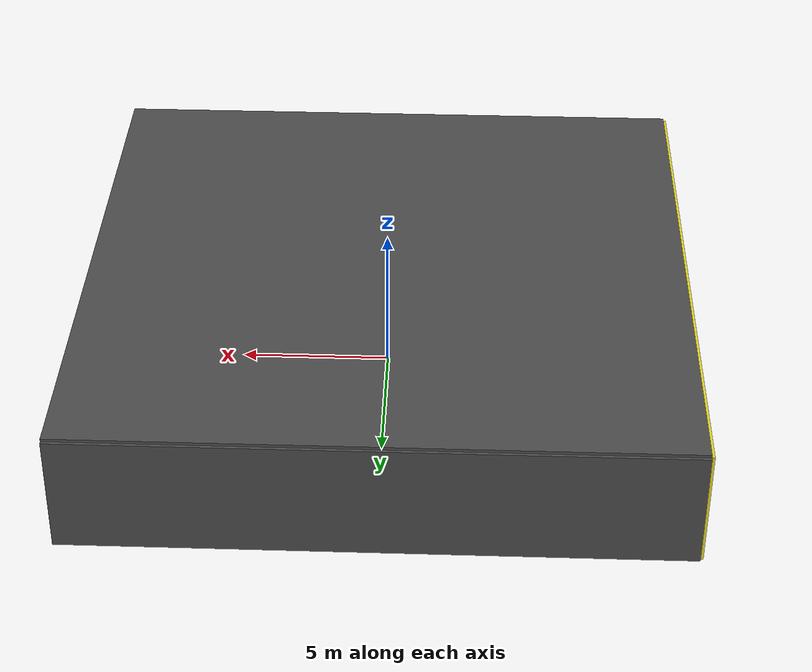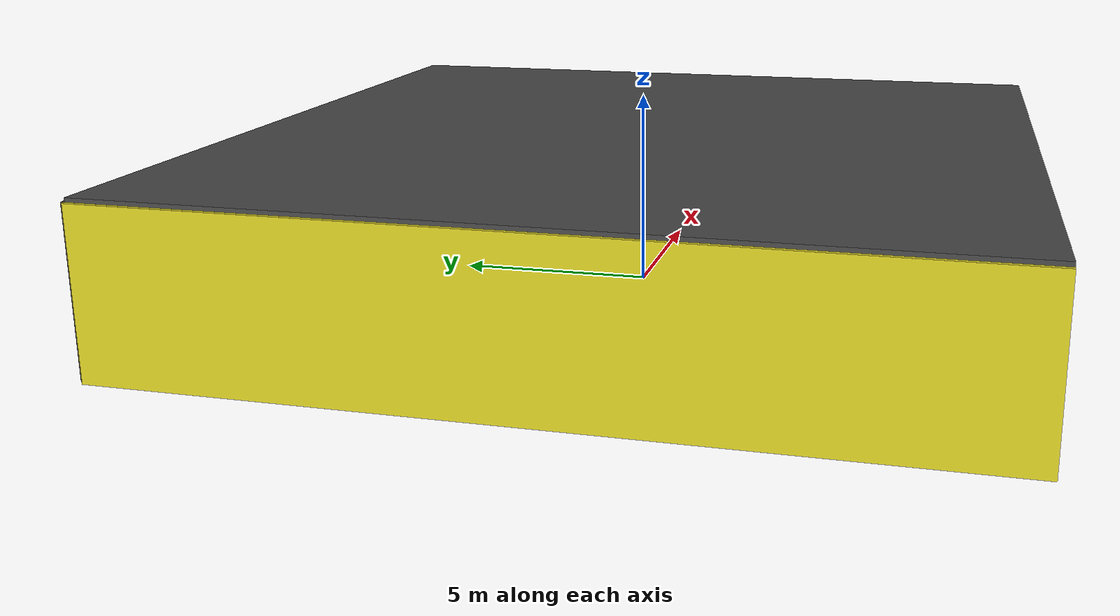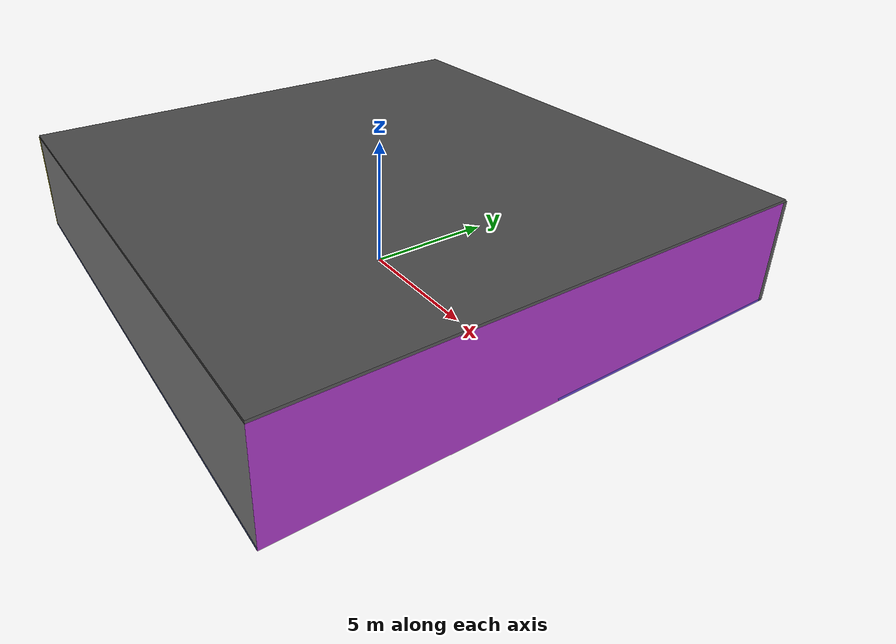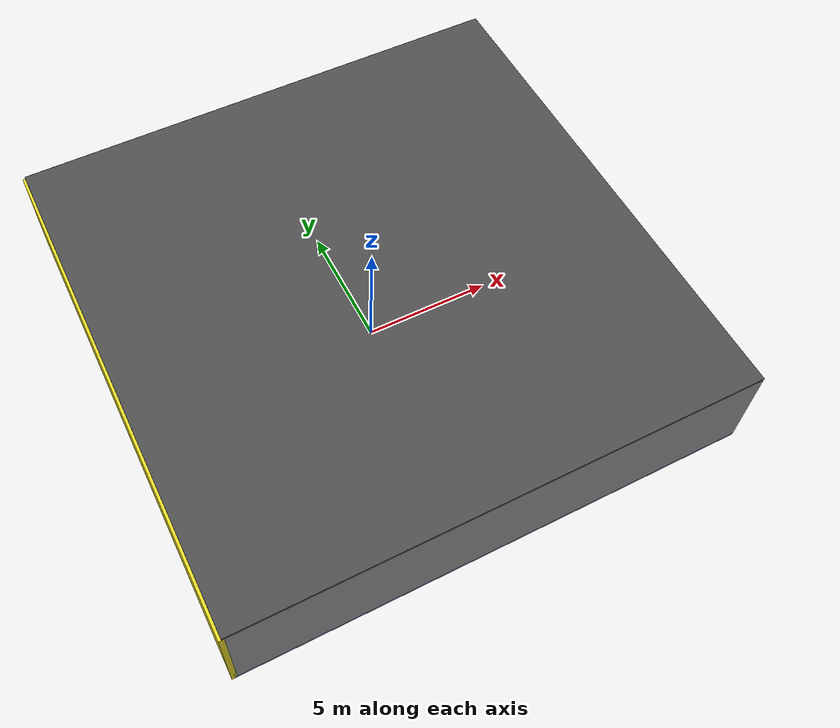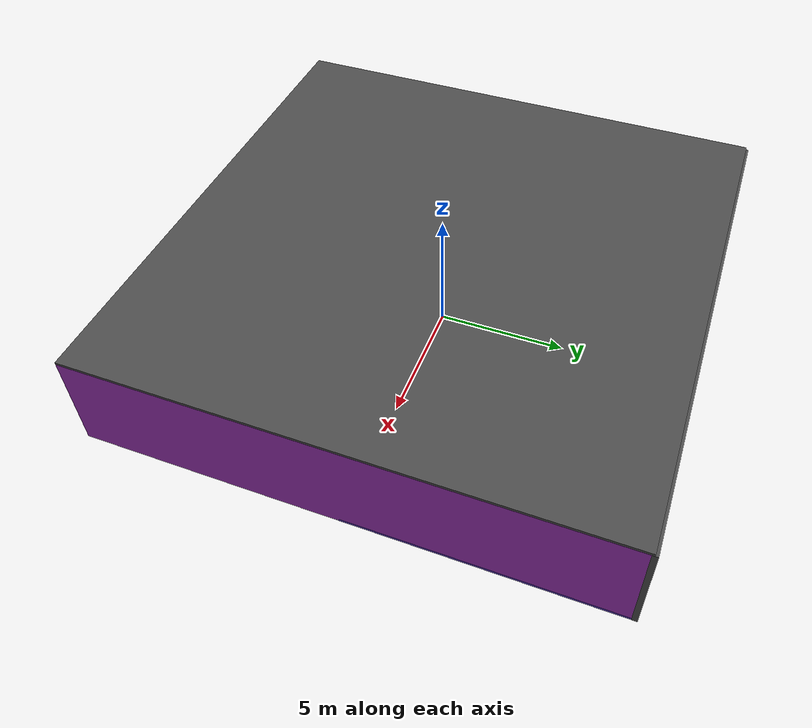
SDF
<sdf version="1.4">
 <world name="default">
  <physics type="ode">
   <max_step_size>0.001</max_step_size>
   <real_time_factor>1</real_time_factor>
   <real_time_update_rate>1000</real_time_update_rate>
   <gravity>0 0 -9.8</gravity>
  </physics>
  <scene><ambient>0.4 0.4 0.4 1</ambient><background>0.7 0.7 0.7 1</background><shadows>1</shadows></scene>
  <model name="Surrounding">
   <static>1</static>
   <link name="Ceiling">
    <collision name="Ceiling_Collision"><geometry><box><size>20 20 0.1</size></box></geometry></collision>
    <visual name="Ceiling_Visual">
     <geometry><box><size>20 20 0.1</size></box></geometry>
     <material>
      <script><uri>file://media/materials/scripts/gazebo.material</uri><name>Gazebo/DarkGrey</name></script>
     </material>
    </visual>
    <pose>0 0 4.05 0 0 0</pose>
   </link>
   <link name="Wall_South">
    <collision name="Wall_South_Collision">
     <geometry><box><size>20 0 4</size></box></geometry>
     <pose>0 0 2 0 -0 0</pose>
    </collision>
    <visual name="Wall_South_Visual">
     <pose>0 0 2 0 -0 0</pose>
     <geometry><box><size>20 0 4</size></box></geometry>
     <material>
      <script><uri>file://media/materials/scripts/gazebo.material</uri><name>Gazebo/GreyGradientSky</name></script>
     </material>
    </visual>
    <velocity_decay><linear>0</linear><angular>0</angular></velocity_decay>
    <pose>0 -10 0 0 -0 0</pose>
   </link>
   <link name="Wall_East">
    <collision name="Wall_21_Collision">
     <geometry><box><size>20 0 4</size></box></geometry>
     <pose>0 0 2 0 -0 0</pose>
    </collision>
    <visual name="Wall_21_Visual">
     <pose>0 0 2 0 -0 0</pose>
     <geometry><box><size>20 0 4</size></box></geometry>
     <material>
      <script><uri>file://media/materials/scripts/gazebo.material</uri><name>Gazebo/PurpleGlow</name></script>
     </material>
    </visual>
    <velocity_decay><linear>0</linear><angular>0</angular></velocity_decay>
    <pose>10 0 0 0 -0 1.5708</pose>
   </link>
   <link name="Wall_North">
    <collision name="Wall_22_Collision">
     <geometry><box><size>20 0.2 4</size></box></geometry>
     <pose>0 0 2 0 -0 0</pose>
    </collision>
    <visual name="Wall_22_Visual">
     <pose>0 0 2 0 -0 0</pose>
     <geometry><box><size>20 0.2 4</size></box></geometry>
     <material>
      <script><uri>file://media/materials/scripts/gazebo.material</uri><name>Gazebo/DarkGrey</name></script>
     </material>
    </visual>
    <velocity_decay><linear>0</linear><angular>0</angular></velocity_decay>
    <pose>0 10 0 0 -0 0</pose>
   </link>
   <link name="Wall_West">
    <collision name="Wall_23_Collision">
     <geometry><box><size>20 0.2 4</size></box></geometry>
     <pose>0 0 2 0 -0 0</pose>
    </collision>
    <visual name="Wall_23_Visual">
     <pose>0 0 2 0 -0 0</pose>
     <geometry><box><size>20 0.2 4</size></box></geometry>
     <material>
      <script><uri>file://media/materials/scripts/gazebo.material</uri><name>Gazebo/YellowGlow</name></script>
     </material>
    </visual>
    <velocity_decay><linear>0</linear><angular>0</angular></velocity_decay>
    <pose>-10 0 0 0 0 -1.5708</pose>
   </link>
   <link name="Ground_link">
    <collision name="collision">
     <pose>0 0 .05 0 -0 0</pose>
     <geometry><box><size>20 20 0.1</size></box></geometry>
    </collision>
    <visual name="visual">
     <pose>0 0 .05 0 -0 0</pose>
     <geometry><box><size>20 20 0.1</size></box></geometry>
     <material>
      <script><uri>file://media/materials/scripts/gazebo.material</uri><name>Gazebo/BlueTransparent</name></script>
     </material>
    </visual>
   </link>
   <static>1</static>
  </model>
  <spherical_coordinates>
   <surface_model>EARTH_WGS84</surface_model>
   <latitude_deg>0</latitude_deg>
   <longitude_deg>0</longitude_deg>
   <elevation>0</elevation>
   <heading_deg>0</heading_deg>
  </spherical_coordinates>
  <light name="lightball_0" type="diffuse">
   <diffuse>0.8 0.8 0.8 1</diffuse>
   <specular>0.2 0.2 0.2 1</specular>
   <attenuation>
    <range>100</range>
    <constant>0.7</constant>
    <linear>0.01</linear>
    <quadratic>0.001</quadratic>
   </attenuation>
   <direction>-0.5 0.1 -0.9</direction>
   <pose>-9.72528693205 6.65322113315 1.89384050971 0 0 0</pose>
  </light>
  <light name="lightball_1" type="diffuse">
   <diffuse>0.8 0.8 0.8 1</diffuse>
   <specular>0.2 0.2 0.2 1</specular>
   <attenuation>
    <range>100</range>
    <constant>0.7</constant>
    <linear>0.01</linear>
    <quadratic>0.001</quadratic>
   </attenuation>
   <direction>-0.5 0.1 -0.9</direction>
   <pose>-3.44012819509 1.92037072494 1.79241434719 0 0 0</pose>
  </light>
  <light name="lightball_2" type="diffuse">
   <diffuse>0.8 0.8 0.8 1</diffuse>
   <specular>0.2 0.2 0.2 1</specular>
   <attenuation>
    <range>100</range>
    <constant>0.7</constant>
    <linear>0.01</linear>
    <quadratic>0.001</quadratic>
   </attenuation>
   <direction>-0.5 0.1 -0.9</direction>
   <pose>-1.87644853998 -4.07353846027 3.25910537041 0 0 0</pose>
  </light>
  <light name="lightball_3" type="diffuse">
   <diffuse>0.8 0.8 0.8 1</diffuse>
   <specular>0.2 0.2 0.2 1</specular>
   <attenuation>
    <range>100</range>
    <constant>0.7</constant>
    <linear>0.01</linear>
    <quadratic>0.001</quadratic>
   </attenuation>
   <direction>-0.5 0.1 -0.9</direction>
   <pose>-4.88904057618 0.615448266062 2.82697435122 0 0 0</pose>
  </light>
  <light name="lightball_4" type="diffuse">
   <diffuse>0.8 0.8 0.8 1</diffuse>
   <specular>0.2 0.2 0.2 1</specular>
   <attenuation>
    <range>100</range>
    <constant>0.7</constant>
    <linear>0.01</linear>
    <quadratic>0.001</quadratic>
   </attenuation>
   <direction>-0.5 0.1 -0.9</direction>
   <pose>7.17997727367 -5.23773197959 1.83527359009 0 0 0</pose>
  </light>
  <light name="lightball_5" type="diffuse">
   <diffuse>0.8 0.8 0.8 1</diffuse>
   <specular>0.2 0.2 0.2 1</specular>
   <attenuation>
    <range>100</range>
    <constant>0.7</constant>
    <linear>0.01</linear>
    <quadratic>0.001</quadratic>
   </attenuation>
   <direction>-0.5 0.1 -0.9</direction>
   <pose>-3.94492461951 7.49102271274 0.719801364811 0 0 0</pose>
  </light>
  <light name="lightball_6" type="diffuse">
   <diffuse>0.8 0.8 0.8 1</diffuse>
   <specular>0.2 0.2 0.2 1</specular>
   <attenuation>
    <range>100</range>
    <constant>0.7</constant>
    <linear>0.01</linear>
    <quadratic>0.001</quadratic>
   </attenuation>
   <direction>-0.5 0.1 -0.9</direction>
   <pose>-4.91161864368 -5.70064417097 3.699986854 0 0 0</pose>
  </light>
  <light name="lightball_7" type="diffuse">
   <diffuse>0.8 0.8 0.8 1</diffuse>
   <specular>0.2 0.2 0.2 1</specular>
   <attenuation>
    <range>100</range>
    <constant>0.7</constant>
    <linear>0.01</linear>
    <quadratic>0.001</quadratic>
   </attenuation>
   <direction>-0.5 0.1 -0.9</direction>
   <pose>-2.52685046947 9.7737190561 1.80095270579 0 0 0</pose>
  </light>
  <light name="lightball_8" type="diffuse">
   <diffuse>0.8 0.8 0.8 1</diffuse>
   <specular>0.2 0.2 0.2 1</specular>
   <attenuation>
    <range>100</range>
    <constant>0.7</constant>
    <linear>0.01</linear>
    <quadratic>0.001</quadratic>
   </attenuation>
   <direction>-0.5 0.1 -0.9</direction>
   <pose>-9.79364435521 -8.96475599557 1.21963335761 0 0 0</pose>
  </light>
  <light name="lightball_9" type="diffuse">
   <diffuse>0.8 0.8 0.8 1</diffuse>
   <specular>0.2 0.2 0.2 1</specular>
   <attenuation>
    <range>100</range>
    <constant>0.7</constant>
    <linear>0.01</linear>
    <quadratic>0.001</quadratic>
   </attenuation>
   <direction>-0.5 0.1 -0.9</direction>
   <pose>-9.07885861486 -7.62812738445 2.66747574707 0 0 0</pose>
  </light>
  <light name="lightball_10" type="diffuse">
   <diffuse>0.8 0.8 0.8 1</diffuse>
   <specular>0.2 0.2 0.2 1</specular>
   <attenuation>
    <range>100</range>
    <constant>0.7</constant>
    <linear>0.01</linear>
    <quadratic>0.001</quadratic>
   </attenuation>
   <direction>-0.5 0.1 -0.9</direction>
   <pose>4.40014135066 -1.1940980083 2.72479872856 0 0 0</pose>
  </light>
  <light name="lightball_11" type="diffuse">
   <diffuse>0.8 0.8 0.8 1</diffuse>
   <specular>0.2 0.2 0.2 1</specular>
   <attenuation>
    <range>100</range>
    <constant>0.7</constant>
    <linear>0.01</linear>
    <quadratic>0.001</quadratic>
   </attenuation>
   <direction>-0.5 0.1 -0.9</direction>
   <pose>3.31246063527 4.77674020362 3.11131643479 0 0 0</pose>
  </light>
  <light name="lightball_12" type="diffuse">
   <diffuse>0.8 0.8 0.8 1</diffuse>
   <specular>0.2 0.2 0.2 1</specular>
   <attenuation>
    <range>100</range>
    <constant>0.7</constant>
    <linear>0.01</linear>
    <quadratic>0.001</quadratic>
   </attenuation>
   <direction>-0.5 0.1 -0.9</direction>
   <pose>-8.2362540175 1.5436035448 1.69296961074 0 0 0</pose>
  </light>
  <include><uri>model://table</uri><pose>-7.8804249386 -1.48032752182 0 0 0 3.01735243924</pose></include>
  <include>
   <uri>model://textured_shapes</uri>
   <pose>-1.75455540825 -0.502810086151 0 0 0 2.41693999927</pose>
  </include>
  <include>
   <uri>model://construction_cone</uri>
   <pose>2.08801537665 -7.62465189048 0 0 0 0.272995187881</pose>
  </include>
  <include><uri>model://cabinet</uri><pose>2.57050834284 -1.16819806064 0 0 0 2.79997956106</pose></include>
  <include><uri>model://cabinet</uri><pose>2.48379235453 5.40726904041 0 0 0 0.0589970991381</pose></include>
  <include><uri>model://cabinet</uri><pose>4.66114658003 -6.49253442107 0 0 0 0.994185999924</pose></include>
  <include><uri>model://table</uri><pose>8.06877804727 5.34239432497 0 0 0 1.6925423929</pose></include>
 </world>
</sdf>

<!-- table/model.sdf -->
<sdf version="1.5">
  <model name="table">
    <static>true</static>
    <link name="link">
      <collision name="surface">
        <pose>0 0 1.0 0 0 0</pose>
        <geometry>
          <box>
            <size>1.5 0.8 0.03</size>
          </box>
        </geometry>
        <surface>
          <friction>
            <ode>
              <mu>0.6</mu>
              <mu2>0.6</mu2>
            </ode>
          </friction>
        </surface>
      </collision>
      <visual name="visual1">
        <pose>0 0 1.0 0 0 0</pose>
        <geometry>
          <box>
            <size>1.5 0.8 0.03</size>
          </box>
        </geometry>
        <material>
          <script>
            <uri>model://media/materials/scripts/gazebo.material</uri>
            <name>Gazebo/Wood</name>
          </script>
        </material>
      </visual>
      <collision name="front_left_leg">
        <pose>0.68 0.38 0.5 0 0 0</pose>
        <geometry>
          <cylinder>
            <radius>0.02</radius>
            <length>1.0</length>
          </cylinder>
        </geometry>
      </collision>
      <visual name="front_left_leg">
        <pose>0.68 0.38 0.5 0 0 0</pose>
        <geometry>
          <cylinder>
            <radius>0.02</radius>
            <length>1.0</length>
          </cylinder>
        </geometry>
        <material>
          <script>
            <uri>model://media/materials/scripts/gazebo.material</uri>
            <name>Gazebo/Grey</name>
          </script>
        </material>
      </visual>
      <collision name="front_right_leg">
        <pose>0.68 -0.38 0.5 0 0 0</pose>
        <geometry>
          <cylinder>
            <radius>0.02</radius>
            <length>1.0</length>
          </cylinder>
        </geometry>
      </collision>
      <visual name="front_right_leg">
        <pose>0.68 -0.38 0.5 0 0 0</pose>
        <geometry>
          <cylinder>
            <radius>0.02</radius>
            <length>1.0</length>
          </cylinder>
        </geometry>
        <material>
          <script>
            <uri>model://media/materials/scripts/gazebo.material</uri>
            <name>Gazebo/Grey</name>
          </script>
        </material>
      </visual>
      <collision name="back_right_leg">
        <pose>-0.68 -0.38 0.5 0 0 0</pose>
        <geometry>
          <cylinder>
            <radius>0.02</radius>
            <length>1.0</length>
          </cylinder>
        </geometry>
      </collision>
      <visual name="back_right_leg">
        <pose>-0.68 -0.38 0.5 0 0 0</pose>
        <geometry>
          <cylinder>
            <radius>0.02</radius>
            <length>1.0</length>
          </cylinder>
        </geometry>
        <material>
          <script>
            <uri>model://media/materials/scripts/gazebo.material</uri>
            <name>Gazebo/Grey</name>
          </script>
        </material>
      </visual>
      <collision name="back_left_leg">
        <pose>-0.68 0.38 0.5 0 0 0</pose>
        <geometry>
          <cylinder>
            <radius>0.02</radius>
            <length>1.0</length>
          </cylinder>
        </geometry>
      </collision>
      <visual name="back_left_leg">
        <pose>-0.68 0.38 0.5 0 0 0</pose>
        <geometry>
          <cylinder>
            <radius>0.02</radius>
            <length>1.0</length>
          </cylinder>
        </geometry>
        <material>
          <script>
            <uri>model://media/materials/scripts/gazebo.material</uri>
            <name>Gazebo/Grey</name>
          </script>
        </material>
      </visual>
    </link>
  </model>
</sdf>

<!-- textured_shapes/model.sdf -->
<sdf version="1.6">
  <model name="textured_shapes">
    <pose>0 0 0.5 0 0 0</pose>
    <link name="box">
      <pose>0 -1.5 0 0 0 0</pose>
      <collision name="collision">
        <geometry>
          <box>
            <size>1 1 1</size>
          </box>
        </geometry>
      </collision>
      <visual name="visual">
        <geometry>
          <box>
            <size>1 1 1</size>
          </box>
        </geometry>
        <material>
          <script>
            <uri>model://../model_source/models/textured_shapes/materials/scripts</uri>
            <uri>model://../model_source/models/textured_shapes/materials/textures</uri>
            <name>TexturedShape/Squares</name>
          </script>
        </material>
      </visual>
    </link>
    <link name="sphere">
      <collision name="collision">
        <geometry>
          <sphere>
            <radius>0.5</radius>
          </sphere>
        </geometry>
      </collision>
      <visual name="visual">
        <geometry>
          <sphere>
            <radius>0.5</radius>
          </sphere>
        </geometry>
        <material>
          <script>
            <uri>model://../model_source/models/textured_shapes/materials/scripts</uri>
            <uri>model://../model_source/models/textured_shapes/materials/textures</uri>
            <name>TexturedShape/Squares</name>
          </script>
        </material>
      </visual>
    </link>
    <link name="cylinder">
      <pose>0 1.5 0 0 0 0</pose>
      <collision name="collision">
        <geometry>
          <cylinder>
            <radius>0.5</radius>
            <length>1</length>
          </cylinder>
        </geometry>
      </collision>
      <visual name="visual">
        <geometry>
          <cylinder>
            <radius>0.5</radius>
            <length>1</length>
          </cylinder>
        </geometry>
        <material>
          <script>
            <uri>model://../model_source/models/textured_shapes/materials/scripts</uri>
            <uri>model://../model_source/models/textured_shapes/materials/textures</uri>
            <name>TexturedShape/Squares</name>
          </script>
        </material>
      </visual>
    </link>
  </model>
</sdf>

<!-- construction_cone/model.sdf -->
<sdf version="1.5">
  <model name="Construction Cone">
    <link name="link">
      <collision name="collision">
        <geometry>
          <mesh>
            <scale>10 10 10</scale>
            <uri>file://isr-testbed/construction_cone/meshes/construction_cone.dae</uri>
          </mesh>
        </geometry>
      </collision>
      <visual name="visual">
        <geometry>
          <mesh>
            <scale>10 10 10</scale>
            <uri>file://isr-testbed/construction_cone/meshes/construction_cone.dae</uri>
          </mesh>
        </geometry>
      </visual>
    </link>
  </model>
</sdf>

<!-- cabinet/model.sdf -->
<sdf version="1.5">
  <model name="cabinet">
    <static>true</static>
    <link name="cabinet_bottom_plate">
      <inertial>
        <pose>0 0 -1 0 0 0</pose>
        <inertia>
          <ixx>2.050000</ixx>
          <ixy>0</ixy>
          <ixz>0</ixz>
          <iyy>2.050000</iyy>
          <iyz>0</iyz>
          <izz>2.050000</izz>
        </inertia>
        <mass>25.000000</mass>
      </inertial>
      <collision name="cabinet_bottom_plate_geom">
        <pose>0 0 0.010000 0 0 0</pose>
        <geometry>
          <box>
            <size>0.450000 0.450000 0.020000</size>
          </box>
        </geometry>
      </collision>
      <visual name="cabinet_bottom_plate_geom_visual">
        <pose>0 0 0.010000 0 0 0</pose>
        <geometry>
          <box>
            <size>0.450000 0.450000 0.020000</size>
          </box>
        </geometry>
        <material>
          <script>
            <uri>model://media/materials/scripts/gazebo.material</uri>
            <name>Gazebo/Wood</name>
          </script>
        </material>
      </visual>
      <collision name="cabinet_bottom_plate_geom_cabinet_back_plate">
        <pose>0.235000 0 0.510000 0 0 0</pose>
        <geometry>
          <box>
            <size>0.020000 0.450000 1.020000</size>
          </box>
        </geometry>
      </collision>
      <visual name="cabinet_bottom_plate_geom_cabinet_back_plate_visual">
        <pose>0.235000 0 0.510000 0 0 0</pose>
        <geometry>
          <box>
            <size>0.020000 0.450000 1.020000</size>
          </box>
        </geometry>
        <material>
          <script>
            <uri>model://media/materials/scripts/gazebo.material</uri>
            <name>Gazebo/Wood</name>
          </script>
        </material>
      </visual>
      <collision name="cabinet_bottom_plate_geom_cabinet_left_plate">
        <pose>0 0.235000 0.510000 0 0 0</pose>
        <geometry>
          <box>
            <size>0.450000 0.020000 1.020000</size>
          </box>
        </geometry>
      </collision>
      <visual name="cabinet_bottom_plate_geom_cabinet_left_plate_visual">
        <pose>0 0.235000 0.510000 0 0 0</pose>
        <geometry>
          <box>
            <size>0.450000 0.020000 1.020000</size>
          </box>
        </geometry>
        <material>
          <script>
            <uri>model://media/materials/scripts/gazebo.material</uri>
            <name>Gazebo/Wood</name>
          </script>
        </material>
      </visual>
      <collision name="cabinet_bottom_plate_geom_cabinet_middle_plate">
        <pose>0 0 0.510000 0 0 0</pose>
        <geometry>
          <box>
            <size>0.450000 0.450000 0.020000</size>
          </box>
        </geometry>
      </collision>
      <visual name="cabinet_bottom_plate_geom_cabinet_middle_plate_visual">
        <pose>0 0 0.510000 0 0 0</pose>
        <geometry>
          <box>
            <size>0.450000 0.450000 0.020000</size>
          </box>
        </geometry>
        <material>
          <script>
            <uri>model://media/materials/scripts/gazebo.material</uri>
            <name>Gazebo/Wood</name>
          </script>
        </material>
      </visual>
      <collision name="cabinet_bottom_plate_geom_cabinet_right_plate">
        <pose>0 -0.235000 0.510000 0 0 0</pose>
        <geometry>
          <box>
            <size>0.450000 0.020000 1.020000</size>
          </box>
        </geometry>
      </collision>
      <visual name="cabinet_bottom_plate_geom_cabinet_right_plate_visual">
        <pose>0 -0.235000 0.510000 0 0 0</pose>
        <geometry>
          <box>
            <size>0.450000 0.020000 1.020000</size>
          </box>
        </geometry>
        <material>
          <script>
            <uri>model://media/materials/scripts/gazebo.material</uri>
            <name>Gazebo/Wood</name>
          </script>
        </material>
      </visual>
      <collision name="cabinet_bottom_plate_geom_cabinet_top_plate">
        <pose>0 0 1.010000 0 0 0</pose>
        <geometry>
          <box>
            <size>0.450000 0.450000 0.020000</size>
          </box>
        </geometry>
      </collision>
      <visual name="cabinet_bottom_plate_geom_cabinet_top_plate_visual">
        <pose>0 0 1.010000 0 0 0</pose>
        <geometry>
          <box>
            <size>0.450000 0.450000 0.020000</size>
          </box>
        </geometry>
        <material>
          <script>
            <uri>model://media/materials/scripts/gazebo.material</uri>
            <name>Gazebo/Wood</name>
          </script>
        </material>
      </visual>
    </link>
  </model>
</sdf>
